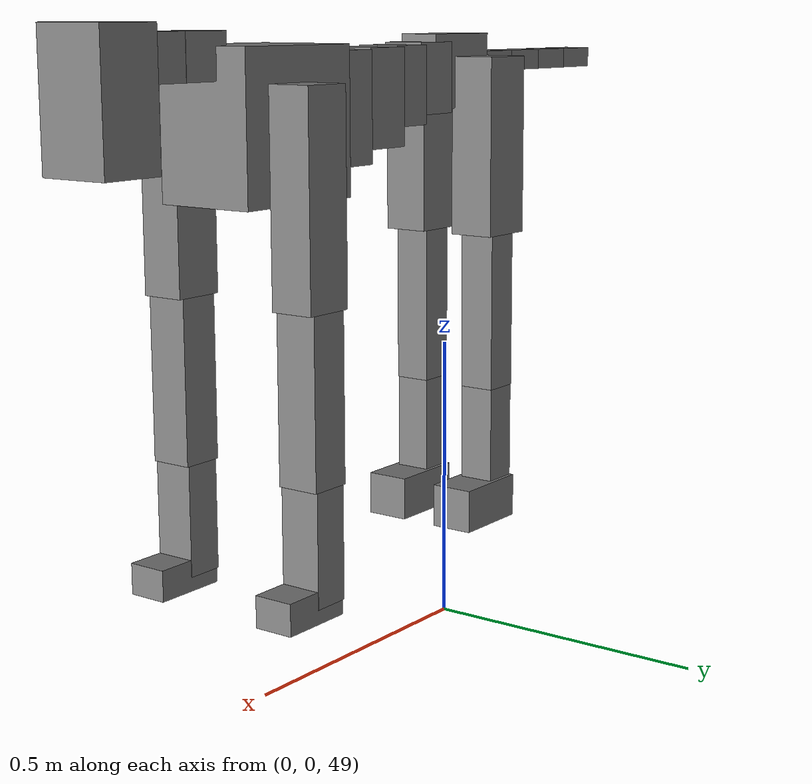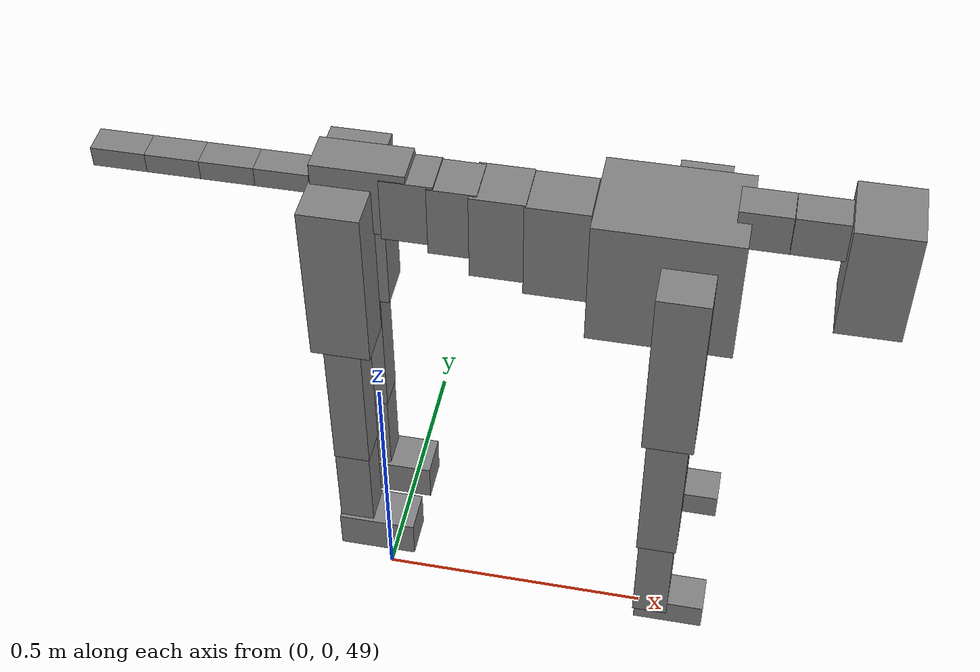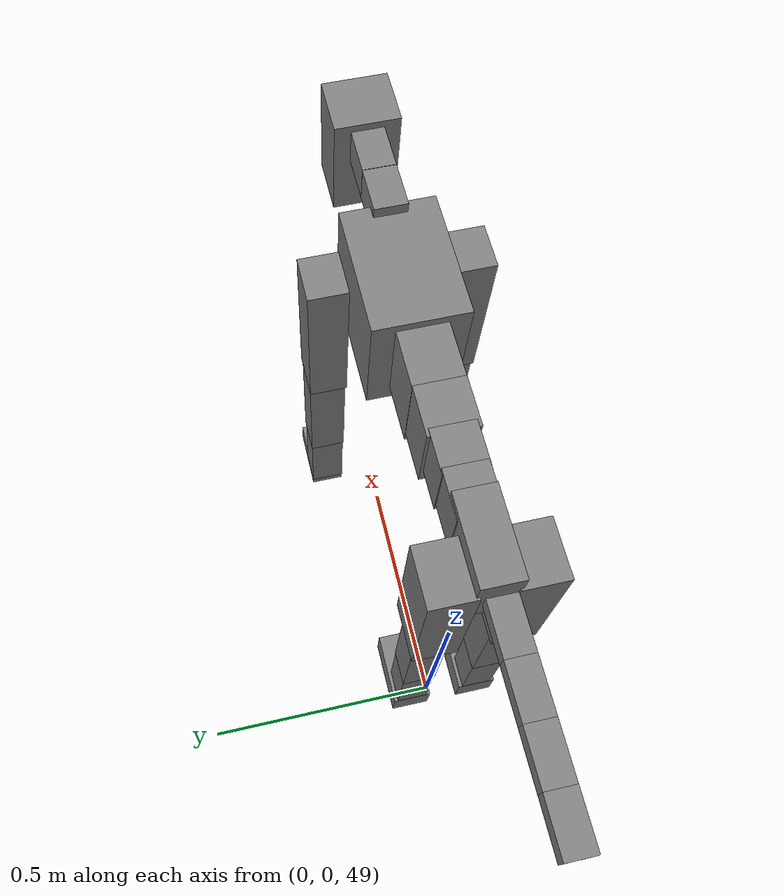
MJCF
<mujoco model="dog">

    <default>
        <joint armature="0.02" stiffness="1" damping="0.2" limited="true" />
        <geom condim="3" friction="1 0.05 0.05" margin="0.01" />
        <motor ctrllimited="true" ctrlrange="-1.0 1.0" forcelimited="true" gear="50" />
    </default>

    <compiler inertiafromgeom="true" angle="radian" />

    <option timestep="0.016" iterations="50" tolerance="1e-10" solver="Newton" jacobian="dense" cone="pyramidal" />

    <size nconmax="20000" njmax="60000" nstack="5000000" />
    <visual>
        <map force="0.1" zfar="30" />
        <rgba haze="0.15 0.25 0.35 1" />
        <quality shadowsize="2048" />
        <global offwidth="800" offheight="800" />
    </visual>

    <asset>
        <texture type="skybox" builtin="gradient" rgb1="0.3 0.5 0.7" rgb2="0 0 0" width="512" height="512" />
        <texture name="texplane" type="2d" builtin="checker" rgb1=".2 .3 .4" rgb2=".1 0.15 0.2" width="512" height="512" mark="cross" markrgb=".8 .8 .8" />
        <texture name="texgeom" type="cube" builtin="flat" mark="cross" width="127" height="1278" rgb1="0.8 0.6 0.4" rgb2="0.8 0.6 0.4" markrgb="1 1 1" random="0.01" />

        <material name="matplane" reflectance="0.3" texture="texplane" texrepeat="1 1" texuniform="true" />
        <material name="matgeom" texture="texgeom" texuniform="true" rgba="0.8 0.6 .4 1" />
    </asset>

    <worldbody>
        <geom name="floor" pos="0 0 0" size="0 0 .25" type="plane" material="matplane" condim="3" />

        <light directional="false" diffuse=".2 .2 .2" specular="0 0 0" pos="0 0 5" dir="0 0 -1" castshadow="false" />
        <light mode="targetbodycom" target="torso" directional="false" diffuse=".8 .8 .8" specular="0.3 0.3 0.3" pos="0 0 4.0" dir="0 0 -1" />

        <body name="root" pos="0 0 50">
            <freejoint name="root_1" />
            <geom type="box" pos="0 0 -0.02" size="0.0774  0.0358  0.063" density="2030" />

            <body name="spine1" pos="0.054 0 0">
                <joint name="spine1_y" axis="0 1 0" range="0 0.7" limited="true" />
                <geom type="box" pos="0.02375 0 -0.03" size="0.04375  0.0375  0.05985" density="2030" />

                <body name="spine2" pos="0.0612 0 0">
                    <joint name="spine2_y" axis="0 1 0" range="-0.15 0.15" limited="true" />
                    <geom type="box" pos="0.03555  0  -0.04" size="0.04055  0.039  0.06615" density="2030" />

                    <body name="spine3" pos="0.0730 0 0">
                        <joint name="spine3_y" axis="0 1 0" range="-0.15 0.15" limited="true" />
                        <geom type="box" pos="0.03555  0  -0.057" size="0.04555  0.0445  0.081" density="2030" />

                        <body name="spine4" pos="0.0780 0 0">
                            <joint name="spine4_y" axis="0 1 0" range="-0.15 0.15" limited="true" />
                            <geom type="box" pos="0.05265  0  -0.07" size="0.05265  0.045  0.09135" density="2030" />

                            <body name="torso" pos="0.1082 0 0">
                                <joint name="torso_y" axis="0 1 0" range="-0.15 0.15" limited="true" />
                                <geom type="box" pos="0.11925  0  -0.085" size="0.11925  0.085  0.11745" density="2030" />

                                <body name="neck1" pos="0.2160  0   0.0180">
                                    <joint name="neck1_y" axis="0 1 0" range="-1.2  -1" limited="true" />
                                    <geom type="box" pos="0.0423  0  0" size="0.0423  0.03  0.036" density="2325" />

                                    <body name="neck2" pos="0.0853  0  0">
                                        <joint name="neck2_y" axis="0 1 0" range="0.1  0" limited="true" />
                                        <geom type="box" pos="0.0423  0  0" size="0.0423  0.03  0.036" density="2325" />

                                        <body name="head" pos="0.0853  0  0">
                                            <joint name="head_y" axis="0 1 0" range="-0.3  -0.2" limited="true" />
                                            <geom type="box" pos="0.0531  0  -0.055" size="0.0531  0.06  0.1044" density="4030" />

                                        </body>
                                    </body>
                                </body>

                                <body name="front_shoulder" pos="0.156  0   -0.0480">
                                    <joint name="front_shoulder_y" axis="0 1 0" range="-1 1.5" limited="true" />
                                    <geom type="box" pos="0 0.13 -0.1396" size="0.0429  0.0366  0.1663" density="1158" />
                                    <geom type="box" pos="0 -0.13 -0.1396" size="0.0429  0.0366  0.1663" density="1158" />

                                    <body name="front_elbow" pos="0  0  -0.2792">
                                        <joint name="front_elbow_y" axis="0 1 0" range="-2 0" limited="true" />
                                        <geom type="box" pos="0 0.13 -0.1470" size="0.0347  0.0354  0.1470" density="1081" />
                                        <geom type="box" pos="0 -0.13 -0.1470" size="0.0347  0.0354  0.1470" density="1081" />

                                        <body name="front_wrist" pos="0  0  -0.2940">
                                            <joint name="front_wrist_y" axis="0 1 0" range="-0.2 0" limited="true" />
                                            <geom type="box" pos="0 0.13 -0.0844" size="0.0310  0.0344  0.0976" density="1664" />
                                            <geom type="box" pos="0 -0.13 -0.0844" size="0.0310  0.0344  0.0976" density="1664" />

                                            <body name="front_finger_end" pos="0  0  -0.1689">
                                                <joint name="front_finger_y" axis="0 1 0" range="-0.4 1" limited="true" />
                                                <geom type="box" pos="0.0337  0.13  -0.0106" size="0.0617  0.0337  0.0256" density="1515" />
                                                <geom type="box" pos="0.0337  -0.13  -0.0106" size="0.0617  0.0337  0.0256" density="1515" />

                                            </body>

                                        </body>
                                    </body>
                                </body>

                            </body>
                        </body>
                    </body>
                </body>
            </body>

            <body name="back_hip" pos="-0.03 0 -0.018">
                <joint name="back_hip_y" axis="0 1 0" range="-1.5 0.3" limited="true" />
                <geom type="box" pos="0 0.07 -0.1299" size="0.0510  0.0400  0.1527" density="1154" />
                <geom type="box" pos="0 -0.07 -0.1299" size="0.0510  0.0400  0.1527" density="1154" />

                <body name="back_knee" pos="0  0  -0.2598">
                    <joint name="back_knee_y" axis="0 1 0" range="0 2.8" limited="true" />
                    <geom type="box" pos="0 0.07 -0.1403" size="0.0319  0.0315  0.1559" density="1227" />
                    <geom type="box" pos="0 -0.07 -0.1403" size="0.0319  0.0315  0.1559" density="1227" />

                    <body name="back_ankle" pos="0  0  -0.2806">
                        <joint name="back_ankle_y" axis="0 1 0" range="-2.2 0" limited="true" />
                        <geom type="box" pos="0 0.07 -0.0983" size="0.0309  0.0309  0.1096" density="1284" />
                        <geom type="box" pos="0 -0.07 -0.0983" size="0.0309  0.0309  0.1096" density="1284" />

                        <body name="back_toe_end" pos="0  0  -0.1967">
                            <joint name="back_toe_y" axis="0 1 0" range="-0.4 1" limited="true" />
                            <geom type="box" pos="0.0381  0.07  -0.0223" size="0.0698  0.0381  0.0373" density="1515" />
                            <geom type="box" pos="0.0381  -0.07  -0.0223" size="0.0698  0.0381  0.0373" density="1515" />

                        </body>
                    </body>
                </body>
            </body>

            <body name="tail1" pos="-0.074 0 -0.006">
                <joint name="tail1_y" axis="0 1 0" range="-0.2 0.2" limited="true" />
                <geom type="box" pos="-0.0536  0  0" size="0.045  0.025  0.0175" density="1587" />

                <body name="tail2" pos="-0.09 0 0">
                    <joint name="tail2_y" axis="0 1 0" range="-0.2 0.2" limited="true" />
                    <geom type="box" pos="-0.0536  0  0" size="0.045  0.025  0.0175" density="1587" />

                    <body name="tail3" pos="-0.09 0 0">
                        <joint name="tail3_y" axis="0 1 0" range="-0.2 0.2" limited="true" />
                        <geom type="box" pos="-0.0536  0  0" size="0.045  0.025  0.0175" density="1587" />

                        <body name="tail4" pos="-0.09 0 0">
                            <joint name="tail4_y" axis="0 1 0" range="-0.2 0.2" limited="true" />
                            <geom type="box" pos="-0.0536  0  0" size="0.045  0.025  0.0175" density="1587" />

                        </body>
                    </body>
                </body>
            </body>
        </body>
    </worldbody>

    <actuator>
        <motor joint="spine1_y" forcerange="-150 150     " />
        <motor joint="spine2_y" forcerange="-150 150     " />
        <motor joint="spine3_y" forcerange="-150 150     " />
        <motor joint="spine4_y" forcerange="-150 150     " />
        <motor joint="torso_y" forcerange="-150 150     " />
        <motor joint="neck1_y" forcerange="-100 100       " />
        <motor joint="neck2_y" forcerange="-100 100       " />
        <motor joint="head_y" forcerange="-150 150       " />
        <motor joint="front_shoulder_y" forcerange="-181.94 162.30" />
        <motor joint="front_elbow_y" forcerange="-174.52 183.29" />
        <motor joint="front_wrist_y" forcerange="-149.47 125.87" />
        <motor joint="front_finger_y" forcerange="-62.61 76.96" />
        <motor joint="back_hip_y" forcerange="-378.32 355.47" />
        <motor joint="back_knee_y" forcerange="-328.84 328.71" />
        <motor joint="back_angle_y" forcerange="-174.14 220.66" />
        <motor joint="back_toe_y" forcerange="-119.75 104.89" />
        <motor joint="tail1_y" forcerange="-50 50     " />
        <motor joint="tail2_y" forcerange="-50 50     " />
        <motor joint="tail3_y" forcerange="-50 50     " />
        <motor joint="tail4_y" forcerange="-50 50     " />
    </actuator>
</mujoco>
